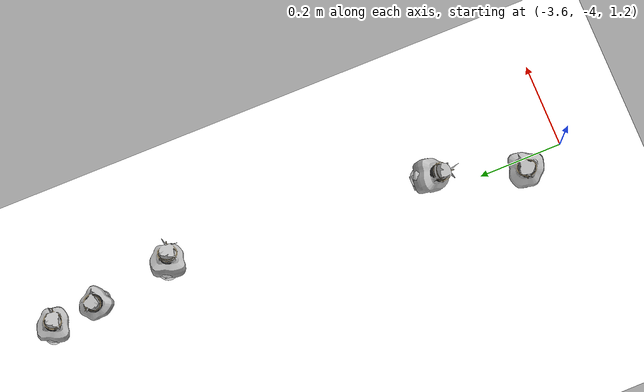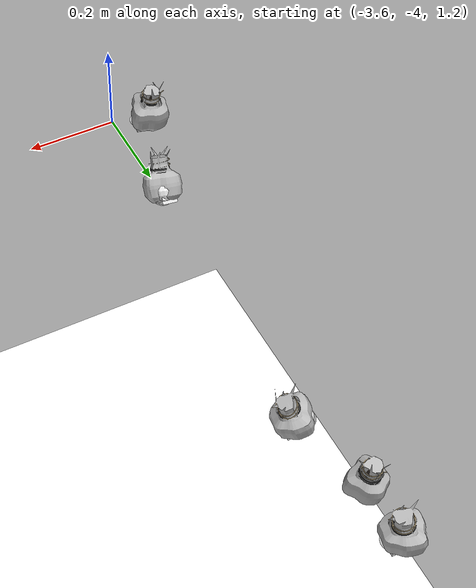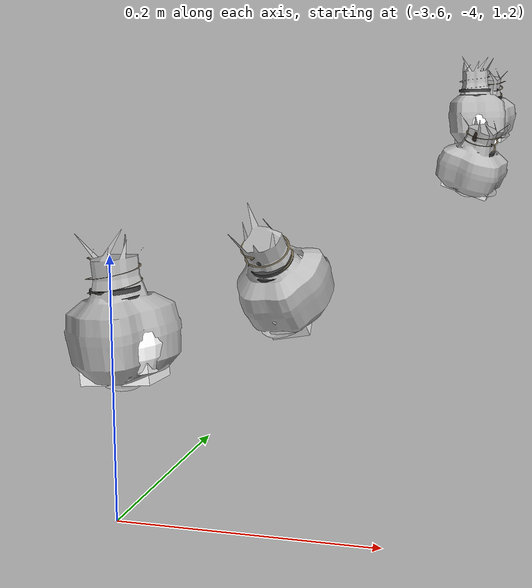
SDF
<sdf version="1.11">
 <world name="peach_orchard">
  <model name="ground">
   <static>true</static>
   <link name="link">
    <visual name="soil">
     <geometry><plane><normal>0 0 1</normal><size>32 22</size></plane></geometry>
     <material>
      <ambient>1 1 1 1</ambient>
      <diffuse>1 1 1 1</diffuse>
      <specular>0.1 0.1 0.1 1</specular>
      <pbr>
       <metal>
        <albedo_map>textures/soil_albedo.png</albedo_map>
        <normal_map type="tangent">textures/soil_normal.png</normal_map>
        <roughness>0.95</roughness>
        <metalness>0</metalness>
       </metal>
      </pbr>
     </material>
    </visual>
    <collision name="c_soil">
     <geometry><plane><normal>0 0 1</normal><size>32 22</size></plane></geometry>
    </collision>
   </link>
  </model>
  <model name="peach_tree_r1_t1_02">
   <pose>-3.63706 -3.88776 1.27 0 0.120821 2.71032</pose>
   <static>true</static>
   <link name="bag">
    <visual name="bag_mesh">
     <pose>0 0 0.0497586 0 0 0</pose>
     <geometry>
      <mesh><uri>model://peach_sim/meshes/bagged_peach.glb</uri><scale>1.04086 1.2229 1.13088</scale></mesh>
     </geometry>
    </visual>
    <visual name="body">
     <pose>0 0 0.0317586 0 0 0</pose>
     <geometry><ellipsoid><radii>0.0390321 0.0317954 0.0342993</radii></ellipsoid></geometry>
     <material>
      <ambient>1 1 1 1</ambient>
      <diffuse>1 1 1 1</diffuse>
      <specular>0.1 0.1 0.1 1</specular>
      <pbr>
       <metal>
        <albedo_map>textures/paper_bag_albedo.png</albedo_map>
        <normal_map type="tangent">textures/paper_bag_normal.png</normal_map>
        <roughness>0.72</roughness>
        <metalness>0</metalness>
       </metal>
      </pbr>
     </material>
    </visual>
    <visual name="bottom_fold">
     <pose>0 0 0.012 0 0 0.35</pose>
     <geometry><box><size>0.0604998 0.0365647 0.022</size></box></geometry>
     <material>
      <ambient>1 1 1 1</ambient>
      <diffuse>1 1 1 1</diffuse>
      <specular>0.1 0.1 0.1 1</specular>
      <pbr>
       <metal>
        <albedo_map>textures/paper_bag_albedo.png</albedo_map>
        <normal_map type="tangent">textures/paper_bag_normal.png</normal_map>
        <roughness>0.8</roughness>
        <metalness>0</metalness>
       </metal>
      </pbr>
     </material>
    </visual>
    <visual name="fruit">
     <pose>0 0 0.0205161 0 0 0</pose>
     <geometry><sphere><radius>0.0275767</radius></sphere></geometry>
     <material>
      <ambient>1 1 1 1</ambient>
      <diffuse>1 1 1 1</diffuse>
      <specular>0.1 0.1 0.1 1</specular>
      <pbr>
       <metal>
        <albedo_map>textures/fruit_skin_albedo.png</albedo_map>
        <normal_map type="tangent">textures/fruit_skin_normal.png</normal_map>
        <roughness>0.55</roughness>
        <metalness>0</metalness>
       </metal>
      </pbr>
     </material>
    </visual>
    <visual name="neck">
     <pose>0 0 0.0725173 0 0 0</pose>
     <geometry><cylinder><radius>0.013</radius><length>0.018</length></cylinder></geometry>
     <material>
      <ambient>1 1 1 1</ambient>
      <diffuse>1 1 1 1</diffuse>
      <specular>0.1 0.1 0.1 1</specular>
      <pbr>
       <metal>
        <albedo_map>textures/paper_bag_albedo.png</albedo_map>
        <normal_map type="tangent">textures/paper_bag_normal.png</normal_map>
        <roughness>0.75</roughness>
        <metalness>0</metalness>
       </metal>
      </pbr>
     </material>
    </visual>
    <visual name="gather">
     <pose>0 0 0.0535173 0 0 0</pose>
     <geometry><cylinder><radius>0.019</radius><length>0.02</length></cylinder></geometry>
     <material>
      <ambient>1 1 1 1</ambient>
      <diffuse>1 1 1 1</diffuse>
      <specular>0.1 0.1 0.1 1</specular>
      <pbr>
       <metal>
        <albedo_map>textures/paper_bag_albedo.png</albedo_map>
        <normal_map type="tangent">textures/paper_bag_normal.png</normal_map>
        <roughness>0.8</roughness>
        <metalness>0</metalness>
       </metal>
      </pbr>
     </material>
    </visual>
    <visual name="inner_paper">
     <pose>0 0 0.0775173 0 0 0</pose>
     <geometry><cylinder><radius>0.01</radius><length>0.008</length></cylinder></geometry>
     <material>
      <ambient>0.180392 0.14902 0.133333 1</ambient>
      <diffuse>0.180392 0.14902 0.133333 1</diffuse>
      <specular>0.1 0.1 0.1 1</specular>
     </material>
    </visual>
    <visual name="wire_0">
     <pose>0 0 0.0675173 0 0 0</pose>
     <geometry><cylinder><radius>0.0205</radius><length>0.0035</length></cylinder></geometry>
     <material>
      <ambient>0.25 0.25 0.25 1</ambient>
      <diffuse>0.25 0.25 0.25 1</diffuse>
      <specular>0.1 0.1 0.1 1</specular>
     </material>
    </visual>
    <visual name="wire_1">
     <pose>0 0 0.0745173 0 0 0</pose>
     <geometry><cylinder><radius>0.0205</radius><length>0.0035</length></cylinder></geometry>
     <material>
      <ambient>0.25 0.25 0.25 1</ambient>
      <diffuse>0.25 0.25 0.25 1</diffuse>
      <specular>0.1 0.1 0.1 1</specular>
     </material>
    </visual>
    <visual name="wire_tail">
     <pose>0.01 0 0.0755173 0 0.521618 0</pose>
     <geometry><cylinder><radius>0.0012</radius><length>0.026</length></cylinder></geometry>
     <material>
      <ambient>0.25 0.25 0.25 1</ambient>
      <diffuse>0.25 0.25 0.25 1</diffuse>
      <specular>0.1 0.1 0.1 1</specular>
     </material>
    </visual>
    <collision name="c_body">
     <pose>0 0 0.0317586 0 0 0</pose>
     <geometry><cylinder><radius>0.0390321</radius><length>0.0635173</length></cylinder></geometry>
    </collision>
   </link>
  </model>
  <model name="peach_tree_r1_t1_03">
   <pose>-3.56636 -3.65847 1.27 0 0.596896 -1.8426</pose>
   <static>true</static>
   <link name="bag">
    <visual name="bag_mesh">
     <pose>0 0 0.0482834 0 0 -0</pose>
     <geometry>
      <mesh><uri>model://peach_sim/meshes/bagged_peach.glb</uri><scale>0.984945 1.1542 1.09735</scale></mesh>
     </geometry>
    </visual>
    <visual name="body">
     <pose>0 0 0.0302834 0 0 0</pose>
     <geometry><ellipsoid><radii>0.0369354 0.0300091 0.032706</radii></ellipsoid></geometry>
     <material>
      <ambient>1 1 1 1</ambient>
      <diffuse>1 1 1 1</diffuse>
      <specular>0.1 0.1 0.1 1</specular>
      <pbr>
       <metal>
        <albedo_map>textures/paper_bag_albedo.png</albedo_map>
        <normal_map type="tangent">textures/paper_bag_normal.png</normal_map>
        <roughness>0.72</roughness>
        <metalness>0</metalness>
       </metal>
      </pbr>
     </material>
    </visual>
    <visual name="bottom_fold">
     <pose>0 0 0.012 0 0 0.35</pose>
     <geometry><box><size>0.0572499 0.0345105 0.022</size></box></geometry>
     <material>
      <ambient>1 1 1 1</ambient>
      <diffuse>1 1 1 1</diffuse>
      <specular>0.1 0.1 0.1 1</specular>
      <pbr>
       <metal>
        <albedo_map>textures/paper_bag_albedo.png</albedo_map>
        <normal_map type="tangent">textures/paper_bag_normal.png</normal_map>
        <roughness>0.8</roughness>
        <metalness>0</metalness>
       </metal>
      </pbr>
     </material>
    </visual>
    <visual name="fruit">
     <pose>0 0 0.0206778 0 0 0</pose>
     <geometry><sphere><radius>0.0277449</radius></sphere></geometry>
     <material>
      <ambient>1 1 1 1</ambient>
      <diffuse>1 1 1 1</diffuse>
      <specular>0.1 0.1 0.1 1</specular>
      <pbr>
       <metal>
        <albedo_map>textures/fruit_skin_albedo.png</albedo_map>
        <normal_map type="tangent">textures/fruit_skin_normal.png</normal_map>
        <roughness>0.55</roughness>
        <metalness>0</metalness>
       </metal>
      </pbr>
     </material>
    </visual>
    <visual name="neck">
     <pose>0 0 0.0695668 0 0 0</pose>
     <geometry><cylinder><radius>0.013</radius><length>0.018</length></cylinder></geometry>
     <material>
      <ambient>1 1 1 1</ambient>
      <diffuse>1 1 1 1</diffuse>
      <specular>0.1 0.1 0.1 1</specular>
      <pbr>
       <metal>
        <albedo_map>textures/paper_bag_albedo.png</albedo_map>
        <normal_map type="tangent">textures/paper_bag_normal.png</normal_map>
        <roughness>0.75</roughness>
        <metalness>0</metalness>
       </metal>
      </pbr>
     </material>
    </visual>
    <visual name="gather">
     <pose>0 0 0.0505668 0 0 0</pose>
     <geometry><cylinder><radius>0.019</radius><length>0.02</length></cylinder></geometry>
     <material>
      <ambient>1 1 1 1</ambient>
      <diffuse>1 1 1 1</diffuse>
      <specular>0.1 0.1 0.1 1</specular>
      <pbr>
       <metal>
        <albedo_map>textures/paper_bag_albedo.png</albedo_map>
        <normal_map type="tangent">textures/paper_bag_normal.png</normal_map>
        <roughness>0.8</roughness>
        <metalness>0</metalness>
       </metal>
      </pbr>
     </material>
    </visual>
    <visual name="inner_paper">
     <pose>0 0 0.0745668 0 0 0</pose>
     <geometry><cylinder><radius>0.01</radius><length>0.008</length></cylinder></geometry>
     <material>
      <ambient>0.180392 0.14902 0.133333 1</ambient>
      <diffuse>0.180392 0.14902 0.133333 1</diffuse>
      <specular>0.1 0.1 0.1 1</specular>
     </material>
    </visual>
    <visual name="wire_0">
     <pose>0 0 0.0645668 0 0 0</pose>
     <geometry><cylinder><radius>0.0205</radius><length>0.0035</length></cylinder></geometry>
     <material>
      <ambient>0.25 0.25 0.25 1</ambient>
      <diffuse>0.25 0.25 0.25 1</diffuse>
      <specular>0.1 0.1 0.1 1</specular>
     </material>
    </visual>
    <visual name="wire_1">
     <pose>0 0 0.0715668 0 0 0</pose>
     <geometry><cylinder><radius>0.0205</radius><length>0.0035</length></cylinder></geometry>
     <material>
      <ambient>0.25 0.25 0.25 1</ambient>
      <diffuse>0.25 0.25 0.25 1</diffuse>
      <specular>0.1 0.1 0.1 1</specular>
     </material>
    </visual>
    <visual name="wire_tail">
     <pose>0.01 0 0.0725668 0 0.521618 0</pose>
     <geometry><cylinder><radius>0.0012</radius><length>0.026</length></cylinder></geometry>
     <material>
      <ambient>0.25 0.25 0.25 1</ambient>
      <diffuse>0.25 0.25 0.25 1</diffuse>
      <specular>0.1 0.1 0.1 1</specular>
     </material>
    </visual>
    <collision name="c_body">
     <pose>0 0 0.0302834 0 0 0</pose>
     <geometry><cylinder><radius>0.0369354</radius><length>0.0605668</length></cylinder></geometry>
    </collision>
   </link>
  </model>
  <model name="peach_tree_r1_t2_06">
   <pose>-3.57289 -2.75439 1.28535 0 0.102666 -0.42643</pose>
   <static>true</static>
   <link name="bag">
    <visual name="bag_mesh">
     <pose>0 0 0.0419107 0 0 -0</pose>
     <geometry>
      <mesh><uri>model://peach_sim/meshes/bagged_peach.glb</uri><scale>1.02112 1.09735 0.952516</scale></mesh>
     </geometry>
    </visual>
    <visual name="body">
     <pose>0 0 0.0239107 0 0 0</pose>
     <geometry><ellipsoid><radii>0.0382919 0.028531 0.0258236</radii></ellipsoid></geometry>
     <material>
      <ambient>1 1 1 1</ambient>
      <diffuse>1 1 1 1</diffuse>
      <specular>0.1 0.1 0.1 1</specular>
      <pbr>
       <metal>
        <albedo_map>textures/paper_bag_albedo.png</albedo_map>
        <normal_map type="tangent">textures/paper_bag_normal.png</normal_map>
        <roughness>0.72</roughness>
        <metalness>0</metalness>
       </metal>
      </pbr>
     </material>
    </visual>
    <visual name="bottom_fold">
     <pose>0 0 0.012 0 0 0.35</pose>
     <geometry><box><size>0.0593525 0.0328107 0.022</size></box></geometry>
     <material>
      <ambient>1 1 1 1</ambient>
      <diffuse>1 1 1 1</diffuse>
      <specular>0.1 0.1 0.1 1</specular>
      <pbr>
       <metal>
        <albedo_map>textures/paper_bag_albedo.png</albedo_map>
        <normal_map type="tangent">textures/paper_bag_normal.png</normal_map>
        <roughness>0.8</roughness>
        <metalness>0</metalness>
       </metal>
      </pbr>
     </material>
    </visual>
    <visual name="fruit">
     <pose>0 0 0.0217909 0 0 0</pose>
     <geometry><sphere><radius>0.0289025</radius></sphere></geometry>
     <material>
      <ambient>1 1 1 1</ambient>
      <diffuse>1 1 1 1</diffuse>
      <specular>0.1 0.1 0.1 1</specular>
      <pbr>
       <metal>
        <albedo_map>textures/fruit_skin_albedo.png</albedo_map>
        <normal_map type="tangent">textures/fruit_skin_normal.png</normal_map>
        <roughness>0.55</roughness>
        <metalness>0</metalness>
       </metal>
      </pbr>
     </material>
    </visual>
    <visual name="neck">
     <pose>0 0 0.0568214 0 0 0</pose>
     <geometry><cylinder><radius>0.013</radius><length>0.018</length></cylinder></geometry>
     <material>
      <ambient>1 1 1 1</ambient>
      <diffuse>1 1 1 1</diffuse>
      <specular>0.1 0.1 0.1 1</specular>
      <pbr>
       <metal>
        <albedo_map>textures/paper_bag_albedo.png</albedo_map>
        <normal_map type="tangent">textures/paper_bag_normal.png</normal_map>
        <roughness>0.75</roughness>
        <metalness>0</metalness>
       </metal>
      </pbr>
     </material>
    </visual>
    <visual name="gather">
     <pose>0 0 0.0378214 0 0 0</pose>
     <geometry><cylinder><radius>0.019</radius><length>0.02</length></cylinder></geometry>
     <material>
      <ambient>1 1 1 1</ambient>
      <diffuse>1 1 1 1</diffuse>
      <specular>0.1 0.1 0.1 1</specular>
      <pbr>
       <metal>
        <albedo_map>textures/paper_bag_albedo.png</albedo_map>
        <normal_map type="tangent">textures/paper_bag_normal.png</normal_map>
        <roughness>0.8</roughness>
        <metalness>0</metalness>
       </metal>
      </pbr>
     </material>
    </visual>
    <visual name="inner_paper">
     <pose>0 0 0.0618214 0 0 0</pose>
     <geometry><cylinder><radius>0.01</radius><length>0.008</length></cylinder></geometry>
     <material>
      <ambient>0.180392 0.14902 0.133333 1</ambient>
      <diffuse>0.180392 0.14902 0.133333 1</diffuse>
      <specular>0.1 0.1 0.1 1</specular>
     </material>
    </visual>
    <visual name="wire_0">
     <pose>0 0 0.0518214 0 0 0</pose>
     <geometry><cylinder><radius>0.0205</radius><length>0.0035</length></cylinder></geometry>
     <material>
      <ambient>0.25 0.25 0.25 1</ambient>
      <diffuse>0.25 0.25 0.25 1</diffuse>
      <specular>0.1 0.1 0.1 1</specular>
     </material>
    </visual>
    <visual name="wire_1">
     <pose>0 0 0.0588214 0 0 0</pose>
     <geometry><cylinder><radius>0.0205</radius><length>0.0035</length></cylinder></geometry>
     <material>
      <ambient>0.25 0.25 0.25 1</ambient>
      <diffuse>0.25 0.25 0.25 1</diffuse>
      <specular>0.1 0.1 0.1 1</specular>
     </material>
    </visual>
    <visual name="wire_tail">
     <pose>0.01 0 0.0598214 0 0.521618 0</pose>
     <geometry><cylinder><radius>0.0012</radius><length>0.026</length></cylinder></geometry>
     <material>
      <ambient>0.25 0.25 0.25 1</ambient>
      <diffuse>0.25 0.25 0.25 1</diffuse>
      <specular>0.1 0.1 0.1 1</specular>
     </material>
    </visual>
    <collision name="c_body">
     <pose>0 0 0.0239107 0 0 0</pose>
     <geometry><cylinder><radius>0.0382919</radius><length>0.0478214</length></cylinder></geometry>
    </collision>
   </link>
  </model>
  <model name="peach_tree_r1_t2_07">
   <pose>-3.56008 -2.86636 1.29325 0 0.143983 2.00921</pose>
   <static>true</static>
   <link name="bag">
    <visual name="bag_mesh">
     <pose>0 0 0.048674 0 0 0</pose>
     <geometry>
      <mesh><uri>model://peach_sim/meshes/bagged_peach.glb</uri><scale>0.927718 1.03533 1.10623</scale></mesh>
     </geometry>
    </visual>
    <visual name="body">
     <pose>0 0 0.030674 0 0 0</pose>
     <geometry><ellipsoid><radii>0.0347894 0.0269187 0.0331279</radii></ellipsoid></geometry>
     <material>
      <ambient>1 1 1 1</ambient>
      <diffuse>1 1 1 1</diffuse>
      <specular>0.1 0.1 0.1 1</specular>
      <pbr>
       <metal>
        <albedo_map>textures/paper_bag_albedo.png</albedo_map>
        <normal_map type="tangent">textures/paper_bag_normal.png</normal_map>
        <roughness>0.72</roughness>
        <metalness>0</metalness>
       </metal>
      </pbr>
     </material>
    </visual>
    <visual name="bottom_fold">
     <pose>0 0 0.012 0 0 0.35</pose>
     <geometry><box><size>0.0539236 0.0309565 0.022</size></box></geometry>
     <material>
      <ambient>1 1 1 1</ambient>
      <diffuse>1 1 1 1</diffuse>
      <specular>0.1 0.1 0.1 1</specular>
      <pbr>
       <metal>
        <albedo_map>textures/paper_bag_albedo.png</albedo_map>
        <normal_map type="tangent">textures/paper_bag_normal.png</normal_map>
        <roughness>0.8</roughness>
        <metalness>0</metalness>
       </metal>
      </pbr>
     </material>
    </visual>
    <visual name="fruit">
     <pose>0 0 0.0183866 0 0 0</pose>
     <geometry><sphere><radius>0.0253621</radius></sphere></geometry>
     <material>
      <ambient>1 1 1 1</ambient>
      <diffuse>1 1 1 1</diffuse>
      <specular>0.1 0.1 0.1 1</specular>
      <pbr>
       <metal>
        <albedo_map>textures/fruit_skin_albedo.png</albedo_map>
        <normal_map type="tangent">textures/fruit_skin_normal.png</normal_map>
        <roughness>0.55</roughness>
        <metalness>0</metalness>
       </metal>
      </pbr>
     </material>
    </visual>
    <visual name="neck">
     <pose>0 0 0.070348 0 0 0</pose>
     <geometry><cylinder><radius>0.013</radius><length>0.018</length></cylinder></geometry>
     <material>
      <ambient>1 1 1 1</ambient>
      <diffuse>1 1 1 1</diffuse>
      <specular>0.1 0.1 0.1 1</specular>
      <pbr>
       <metal>
        <albedo_map>textures/paper_bag_albedo.png</albedo_map>
        <normal_map type="tangent">textures/paper_bag_normal.png</normal_map>
        <roughness>0.75</roughness>
        <metalness>0</metalness>
       </metal>
      </pbr>
     </material>
    </visual>
    <visual name="gather">
     <pose>0 0 0.051348 0 0 0</pose>
     <geometry><cylinder><radius>0.019</radius><length>0.02</length></cylinder></geometry>
     <material>
      <ambient>1 1 1 1</ambient>
      <diffuse>1 1 1 1</diffuse>
      <specular>0.1 0.1 0.1 1</specular>
      <pbr>
       <metal>
        <albedo_map>textures/paper_bag_albedo.png</albedo_map>
        <normal_map type="tangent">textures/paper_bag_normal.png</normal_map>
        <roughness>0.8</roughness>
        <metalness>0</metalness>
       </metal>
      </pbr>
     </material>
    </visual>
    <visual name="inner_paper">
     <pose>0 0 0.075348 0 0 0</pose>
     <geometry><cylinder><radius>0.01</radius><length>0.008</length></cylinder></geometry>
     <material>
      <ambient>0.180392 0.14902 0.133333 1</ambient>
      <diffuse>0.180392 0.14902 0.133333 1</diffuse>
      <specular>0.1 0.1 0.1 1</specular>
     </material>
    </visual>
    <visual name="wire_0">
     <pose>0 0 0.065348 0 0 0</pose>
     <geometry><cylinder><radius>0.0205</radius><length>0.0035</length></cylinder></geometry>
     <material>
      <ambient>0.25 0.25 0.25 1</ambient>
      <diffuse>0.25 0.25 0.25 1</diffuse>
      <specular>0.1 0.1 0.1 1</specular>
     </material>
    </visual>
    <visual name="wire_1">
     <pose>0 0 0.072348 0 0 0</pose>
     <geometry><cylinder><radius>0.0205</radius><length>0.0035</length></cylinder></geometry>
     <material>
      <ambient>0.25 0.25 0.25 1</ambient>
      <diffuse>0.25 0.25 0.25 1</diffuse>
      <specular>0.1 0.1 0.1 1</specular>
     </material>
    </visual>
    <visual name="wire_tail">
     <pose>0.01 0 0.073348 0 0.521618 0</pose>
     <geometry><cylinder><radius>0.0012</radius><length>0.026</length></cylinder></geometry>
     <material>
      <ambient>0.25 0.25 0.25 1</ambient>
      <diffuse>0.25 0.25 0.25 1</diffuse>
      <specular>0.1 0.1 0.1 1</specular>
     </material>
    </visual>
    <collision name="c_body">
     <pose>0 0 0.030674 0 0 0</pose>
     <geometry><cylinder><radius>0.0347894</radius><length>0.061348</length></cylinder></geometry>
    </collision>
   </link>
  </model>
  <model name="peach_tree_r1_t2_08">
   <pose>-3.53651 -3.04641 1.27 0 0.315484 -0.357559</pose>
   <static>true</static>
   <link name="bag">
    <visual name="bag_mesh">
     <pose>0 0 0.0401774 0 0 -0</pose>
     <geometry>
      <mesh><uri>model://peach_sim/meshes/bagged_peach.glb</uri><scale>0.989394 1.19724 0.913123</scale></mesh>
     </geometry>
    </visual>
    <visual name="body">
     <pose>0 0 0.0221774 0 0 0</pose>
     <geometry><ellipsoid><radii>0.0371023 0.0311282 0.0239516</radii></ellipsoid></geometry>
     <material>
      <ambient>1 1 1 1</ambient>
      <diffuse>1 1 1 1</diffuse>
      <specular>0.1 0.1 0.1 1</specular>
      <pbr>
       <metal>
        <albedo_map>textures/paper_bag_albedo.png</albedo_map>
        <normal_map type="tangent">textures/paper_bag_normal.png</normal_map>
        <roughness>0.72</roughness>
        <metalness>0</metalness>
       </metal>
      </pbr>
     </material>
    </visual>
    <visual name="bottom_fold">
     <pose>0 0 0.012 0 0 0.35</pose>
     <geometry><box><size>0.0575085 0.0357974 0.022</size></box></geometry>
     <material>
      <ambient>1 1 1 1</ambient>
      <diffuse>1 1 1 1</diffuse>
      <specular>0.1 0.1 0.1 1</specular>
      <pbr>
       <metal>
        <albedo_map>textures/paper_bag_albedo.png</albedo_map>
        <normal_map type="tangent">textures/paper_bag_normal.png</normal_map>
        <roughness>0.8</roughness>
        <metalness>0</metalness>
       </metal>
      </pbr>
     </material>
    </visual>
    <visual name="fruit">
     <pose>0 0 0.0189135 0 0 0</pose>
     <geometry><sphere><radius>0.02591</radius></sphere></geometry>
     <material>
      <ambient>1 1 1 1</ambient>
      <diffuse>1 1 1 1</diffuse>
      <specular>0.1 0.1 0.1 1</specular>
      <pbr>
       <metal>
        <albedo_map>textures/fruit_skin_albedo.png</albedo_map>
        <normal_map type="tangent">textures/fruit_skin_normal.png</normal_map>
        <roughness>0.55</roughness>
        <metalness>0</metalness>
       </metal>
      </pbr>
     </material>
    </visual>
    <visual name="neck">
     <pose>0 0 0.0533548 0 0 0</pose>
     <geometry><cylinder><radius>0.013</radius><length>0.018</length></cylinder></geometry>
     <material>
      <ambient>1 1 1 1</ambient>
      <diffuse>1 1 1 1</diffuse>
      <specular>0.1 0.1 0.1 1</specular>
      <pbr>
       <metal>
        <albedo_map>textures/paper_bag_albedo.png</albedo_map>
        <normal_map type="tangent">textures/paper_bag_normal.png</normal_map>
        <roughness>0.75</roughness>
        <metalness>0</metalness>
       </metal>
      </pbr>
     </material>
    </visual>
    <visual name="gather">
     <pose>0 0 0.0343548 0 0 0</pose>
     <geometry><cylinder><radius>0.019</radius><length>0.02</length></cylinder></geometry>
     <material>
      <ambient>1 1 1 1</ambient>
      <diffuse>1 1 1 1</diffuse>
      <specular>0.1 0.1 0.1 1</specular>
      <pbr>
       <metal>
        <albedo_map>textures/paper_bag_albedo.png</albedo_map>
        <normal_map type="tangent">textures/paper_bag_normal.png</normal_map>
        <roughness>0.8</roughness>
        <metalness>0</metalness>
       </metal>
      </pbr>
     </material>
    </visual>
    <visual name="inner_paper">
     <pose>0 0 0.0583548 0 0 0</pose>
     <geometry><cylinder><radius>0.01</radius><length>0.008</length></cylinder></geometry>
     <material>
      <ambient>0.180392 0.14902 0.133333 1</ambient>
      <diffuse>0.180392 0.14902 0.133333 1</diffuse>
      <specular>0.1 0.1 0.1 1</specular>
     </material>
    </visual>
    <visual name="wire_0">
     <pose>0 0 0.0483548 0 0 0</pose>
     <geometry><cylinder><radius>0.0205</radius><length>0.0035</length></cylinder></geometry>
     <material>
      <ambient>0.25 0.25 0.25 1</ambient>
      <diffuse>0.25 0.25 0.25 1</diffuse>
      <specular>0.1 0.1 0.1 1</specular>
     </material>
    </visual>
    <visual name="wire_1">
     <pose>0 0 0.0553548 0 0 0</pose>
     <geometry><cylinder><radius>0.0205</radius><length>0.0035</length></cylinder></geometry>
     <material>
      <ambient>0.25 0.25 0.25 1</ambient>
      <diffuse>0.25 0.25 0.25 1</diffuse>
      <specular>0.1 0.1 0.1 1</specular>
     </material>
    </visual>
    <visual name="wire_tail">
     <pose>0.01 0 0.0563548 0 0.521618 0</pose>
     <geometry><cylinder><radius>0.0012</radius><length>0.026</length></cylinder></geometry>
     <material>
      <ambient>0.25 0.25 0.25 1</ambient>
      <diffuse>0.25 0.25 0.25 1</diffuse>
      <specular>0.1 0.1 0.1 1</specular>
     </material>
    </visual>
    <collision name="c_body">
     <pose>0 0 0.0221774 0 0 0</pose>
     <geometry><cylinder><radius>0.0371023</radius><length>0.0443548</length></cylinder></geometry>
    </collision>
   </link>
  </model>
 </world>
</sdf>
